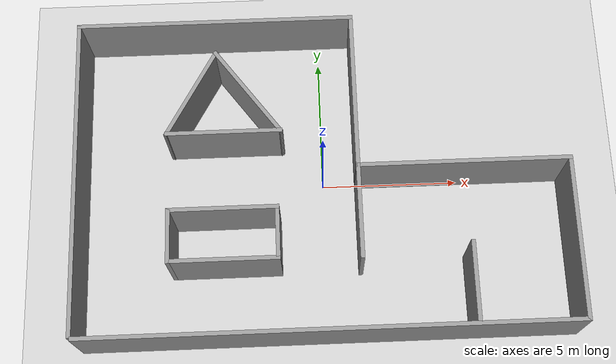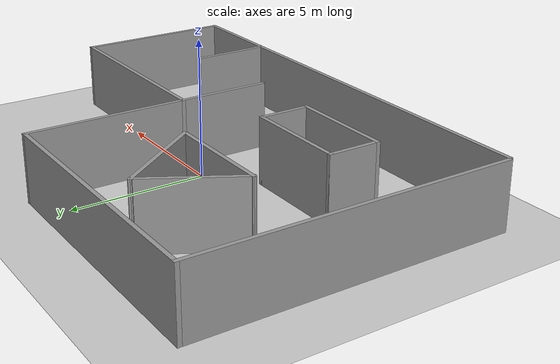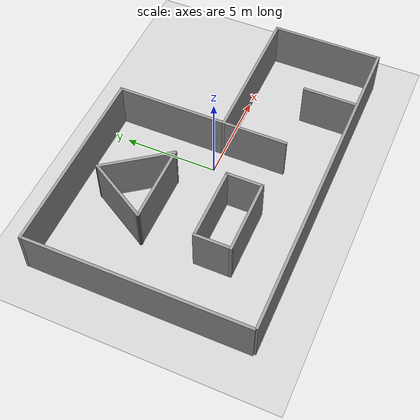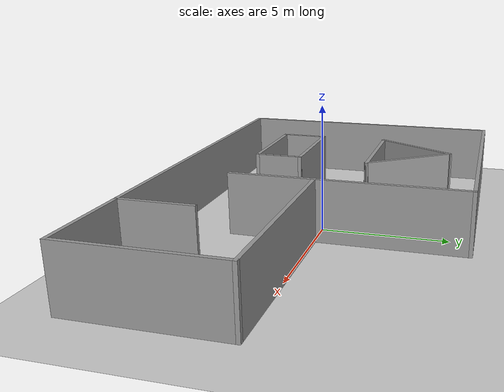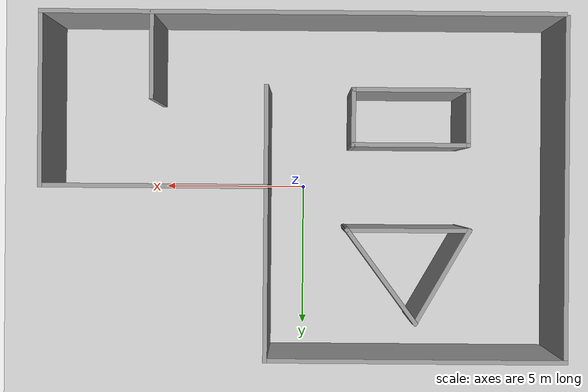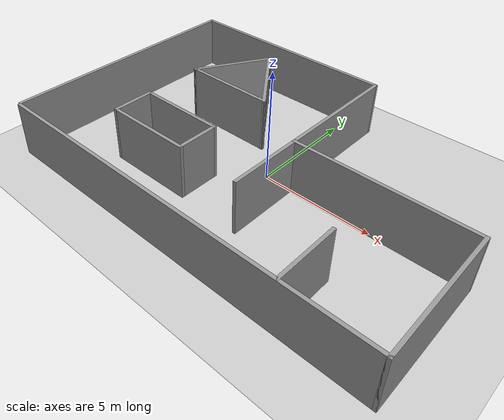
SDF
<?xml version="1.0" ?>

<sdf version="1.6">
<world name="default">
	<include>
		<uri>model://sun</uri>
		<pose>0 0 100 0 0 0</pose>
	</include>

	<include>
		<uri>model://ground_plane</uri>
	</include>

	<include>
		<uri>model://ambiente_0</uri>
		<pose>0 0 0 0 0 0</pose>
	</include>
</world>
</sdf>

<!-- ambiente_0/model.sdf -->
<sdf version='1.7'>
  <model name='ambiente_0'>
    <pose>0.989121 2.29632 0 0 -0 0</pose>
    <link name='Wall_10'>
      <collision name='Wall_10_Collision'>
        <geometry>
          <box>
            <size>4.25 0.15 2.5</size>
          </box>
        </geometry>
        <pose>0 0 1.25 0 -0 0</pose>
      </collision>
      <visual name='Wall_10_Visual'>
        <pose>0 0 1.25 0 -0 0</pose>
        <geometry>
          <box>
            <size>4.25 0.15 2.5</size>
          </box>
        </geometry>
        <material>
          <script>
            <uri>file://media/materials/scripts/gazebo.material</uri>
            <name>Gazebo/Grey</name>
          </script>
          <ambient>1 1 1 1</ambient>
        </material>
        <meta>
          <layer>0</layer>
        </meta>
      </visual>
      <pose>-3.54277 1.44649 0 0 -0 0</pose>
    </link>
    <link name='Wall_11'>
      <collision name='Wall_11_Collision'>
        <geometry>
          <box>
            <size>4.02427 0.15 2.5</size>
          </box>
        </geometry>
        <pose>0 0 1.25 0 -0 0</pose>
      </collision>
      <visual name='Wall_11_Visual'>
        <pose>0 0 1.25 0 -0 0</pose>
        <geometry>
          <box>
            <size>4.02427 0.15 2.5</size>
          </box>
        </geometry>
        <material>
          <script>
            <uri>file://media/materials/scripts/gazebo.material</uri>
            <name>Gazebo/Grey</name>
          </script>
          <ambient>1 1 1 1</ambient>
        </material>
        <meta>
          <layer>0</layer>
        </meta>
      </visual>
      <pose>-2.64277 3.00533 0 0 -0 2.2064</pose>
    </link>
    <link name='Wall_13'>
      <collision name='Wall_13_Collision'>
        <geometry>
          <box>
            <size>3 0.15 2.5</size>
          </box>
        </geometry>
        <pose>0 0 1.25 0 -0 0</pose>
      </collision>
      <visual name='Wall_13_Visual'>
        <pose>0 0 1.25 0 -0 0</pose>
        <geometry>
          <box>
            <size>3 0.15 2.5</size>
          </box>
        </geometry>
        <material>
          <script>
            <uri>file://media/materials/scripts/gazebo.material</uri>
            <name>Gazebo/Grey</name>
          </script>
          <ambient>1 1 1 1</ambient>
        </material>
        <meta>
          <layer>0</layer>
        </meta>
      </visual>
      <pose>5.11956 -4.41361 0 0 -0 1.5708</pose>
    </link>
    <link name='Wall_15'>
      <collision name='Wall_15_Collision'>
        <geometry>
          <box>
            <size>3.5 0.15 2.5</size>
          </box>
        </geometry>
        <pose>0 0 1.25 0 -0 0</pose>
      </collision>
      <visual name='Wall_15_Visual'>
        <pose>0 0 1.25 0 -0 0</pose>
        <geometry>
          <box>
            <size>3.5 0.15 2.5</size>
          </box>
        </geometry>
        <material>
          <script>
            <uri>file://media/materials/scripts/gazebo.material</uri>
            <name>Gazebo/Grey</name>
          </script>
          <ambient>1 1 1 1</ambient>
        </material>
        <meta>
          <layer>0</layer>
        </meta>
      </visual>
      <pose>1.25 -1.675 0 0 -0 -1.5708</pose>
    </link>
    <link name='Wall_17'>
      <collision name='Wall_17_Collision'>
        <geometry>
          <box>
            <size>4 0.15 2.5</size>
          </box>
        </geometry>
        <pose>0 0 1.25 0 -0 0</pose>
      </collision>
      <visual name='Wall_17_Visual'>
        <pose>0 0 1.25 0 -0 0</pose>
        <geometry>
          <box>
            <size>4 0.15 2.5</size>
          </box>
        </geometry>
        <material>
          <script>
            <uri>file://media/materials/scripts/gazebo.material</uri>
            <name>Gazebo/Grey</name>
          </script>
          <ambient>1 1 1 1</ambient>
        </material>
        <meta>
          <layer>0</layer>
        </meta>
      </visual>
      <pose>-3.60156 -1.42807 0 0 -0 0</pose>
    </link>
    <link name='Wall_18'>
      <collision name='Wall_18_Collision'>
        <geometry>
          <box>
            <size>2 0.15 2.5</size>
          </box>
        </geometry>
        <pose>0 0 1.25 0 -0 0</pose>
      </collision>
      <visual name='Wall_18_Visual'>
        <pose>0 0 1.25 0 -0 0</pose>
        <geometry>
          <box>
            <size>2 0.15 2.5</size>
          </box>
        </geometry>
        <material>
          <script>
            <uri>file://media/materials/scripts/gazebo.material</uri>
            <name>Gazebo/Grey</name>
          </script>
          <ambient>1 1 1 1</ambient>
        </material>
        <meta>
          <layer>0</layer>
        </meta>
      </visual>
      <pose>-1.67657 -2.35307 0 0 -0 -1.5708</pose>
    </link>
    <link name='Wall_19'>
      <collision name='Wall_19_Collision'>
        <geometry>
          <box>
            <size>4 0.15 2.5</size>
          </box>
        </geometry>
        <pose>0 0 1.25 0 -0 0</pose>
      </collision>
      <visual name='Wall_19_Visual'>
        <pose>0 0 1.25 0 -0 0</pose>
        <geometry>
          <box>
            <size>4 0.15 2.5</size>
          </box>
        </geometry>
        <material>
          <script>
            <uri>file://media/materials/scripts/gazebo.material</uri>
            <name>Gazebo/Grey</name>
          </script>
          <ambient>1 1 1 1</ambient>
        </material>
        <meta>
          <layer>0</layer>
        </meta>
      </visual>
      <pose>-3.60156 -3.27807 0 0 -0 3.14159</pose>
    </link>
    <link name='Wall_2'>
      <collision name='Wall_2_Collision'>
        <geometry>
          <box>
            <size>17.75 0.15 2.5</size>
          </box>
        </geometry>
        <pose>0 0 1.25 0 -0 0</pose>
      </collision>
      <visual name='Wall_2_Visual'>
        <pose>0 0 1.25 0 -0 0</pose>
        <geometry>
          <box>
            <size>17.75 0.15 2.5</size>
          </box>
        </geometry>
        <material>
          <script>
            <uri>file://media/materials/scripts/gazebo.material</uri>
            <name>Gazebo/Grey</name>
          </script>
          <ambient>1 1 1 1</ambient>
        </material>
        <meta>
          <layer>0</layer>
        </meta>
      </visual>
      <pose>0.05 -5.85 0 0 -0 0</pose>
    </link>
    <link name='Wall_20'>
      <collision name='Wall_20_Collision'>
        <geometry>
          <box>
            <size>2 0.15 2.5</size>
          </box>
        </geometry>
        <pose>0 0 1.25 0 -0 0</pose>
      </collision>
      <visual name='Wall_20_Visual'>
        <pose>0 0 1.25 0 -0 0</pose>
        <geometry>
          <box>
            <size>2 0.15 2.5</size>
          </box>
        </geometry>
        <material>
          <script>
            <uri>file://media/materials/scripts/gazebo.material</uri>
            <name>Gazebo/Grey</name>
          </script>
          <ambient>1 1 1 1</ambient>
        </material>
        <meta>
          <layer>0</layer>
        </meta>
      </visual>
      <pose>-5.52656 -2.35307 0 0 -0 1.5708</pose>
    </link>
    <link name='Wall_3'>
      <collision name='Wall_3_Collision'>
        <geometry>
          <box>
            <size>6 0.15 2.5</size>
          </box>
        </geometry>
        <pose>0 0 1.25 0 -0 0</pose>
      </collision>
      <visual name='Wall_3_Visual'>
        <pose>0 0 1.25 0 -0 0</pose>
        <geometry>
          <box>
            <size>6 0.15 2.5</size>
          </box>
        </geometry>
        <material>
          <script>
            <uri>file://media/materials/scripts/gazebo.material</uri>
            <name>Gazebo/Grey</name>
          </script>
          <ambient>1 1 1 1</ambient>
        </material>
        <meta>
          <layer>0</layer>
        </meta>
      </visual>
      <pose>8.85 -2.925 0 0 -0 1.5708</pose>
    </link>
    <link name='Wall_4'>
      <collision name='Wall_4_Collision'>
        <geometry>
          <box>
            <size>7.75 0.15 2.5</size>
          </box>
        </geometry>
        <pose>0 0 1.25 0 -0 0</pose>
      </collision>
      <visual name='Wall_4_Visual'>
        <pose>0 0 1.25 0 -0 0</pose>
        <geometry>
          <box>
            <size>7.75 0.15 2.5</size>
          </box>
        </geometry>
        <material>
          <script>
            <uri>file://media/materials/scripts/gazebo.material</uri>
            <name>Gazebo/Grey</name>
          </script>
          <ambient>1 1 1 1</ambient>
        </material>
        <meta>
          <layer>0</layer>
        </meta>
      </visual>
      <pose>5.05 -0 0 0 -0 3.14159</pose>
    </link>
    <link name='Wall_5'>
      <collision name='Wall_5_Collision'>
        <geometry>
          <box>
            <size>6 0.15 2.5</size>
          </box>
        </geometry>
        <pose>0 0 1.25 0 -0 0</pose>
      </collision>
      <visual name='Wall_5_Visual'>
        <pose>0 0 1.25 0 -0 0</pose>
        <geometry>
          <box>
            <size>6 0.15 2.5</size>
          </box>
        </geometry>
        <material>
          <script>
            <uri>file://media/materials/scripts/gazebo.material</uri>
            <name>Gazebo/Grey</name>
          </script>
          <ambient>1 1 1 1</ambient>
        </material>
        <meta>
          <layer>0</layer>
        </meta>
      </visual>
      <pose>1.25 2.925 0 0 -0 1.5708</pose>
    </link>
    <link name='Wall_6'>
      <collision name='Wall_6_Collision'>
        <geometry>
          <box>
            <size>10.25 0.15 2.5</size>
          </box>
        </geometry>
        <pose>0 0 1.25 0 -0 0</pose>
      </collision>
      <visual name='Wall_6_Visual'>
        <pose>0 0 1.25 0 -0 0</pose>
        <geometry>
          <box>
            <size>10.25 0.15 2.5</size>
          </box>
        </geometry>
        <material>
          <script>
            <uri>file://media/materials/scripts/gazebo.material</uri>
            <name>Gazebo/Grey</name>
          </script>
          <ambient>1 1 1 1</ambient>
        </material>
        <meta>
          <layer>0</layer>
        </meta>
      </visual>
      <pose>-3.8 5.85 0 0 -0 3.14159</pose>
    </link>
    <link name='Wall_7'>
      <collision name='Wall_7_Collision'>
        <geometry>
          <box>
            <size>11.75 0.15 2.5</size>
          </box>
        </geometry>
        <pose>0 0 1.25 0 -0 0</pose>
      </collision>
      <visual name='Wall_7_Visual'>
        <pose>0 0 1.25 0 -0 0</pose>
        <geometry>
          <box>
            <size>11.75 0.15 2.5</size>
          </box>
        </geometry>
        <material>
          <script>
            <uri>file://media/materials/scripts/gazebo.material</uri>
            <name>Gazebo/Grey</name>
          </script>
          <ambient>1 1 1 1</ambient>
        </material>
        <meta>
          <layer>0</layer>
        </meta>
      </visual>
      <pose>-8.85 0.05 0 0 -0 -1.5708</pose>
    </link>
    <link name='Wall_9'>
      <collision name='Wall_9_Collision'>
        <geometry>
          <box>
            <size>3.75 0.15 2.5</size>
          </box>
        </geometry>
        <pose>0 0 1.25 0 -0 0</pose>
      </collision>
      <visual name='Wall_9_Visual'>
        <pose>0 0 1.25 0 -0 0</pose>
        <geometry>
          <box>
            <size>3.75 0.15 2.5</size>
          </box>
        </geometry>
        <material>
          <script>
            <uri>file://media/materials/scripts/gazebo.material</uri>
            <name>Gazebo/Grey</name>
          </script>
          <ambient>1 1 1 1</ambient>
        </material>
        <meta>
          <layer>0</layer>
        </meta>
      </visual>
      <pose>-4.69277 3.00533 0 0 -0 -2.0944</pose>
    </link>
    <static>1</static>
  </model>
</sdf>
